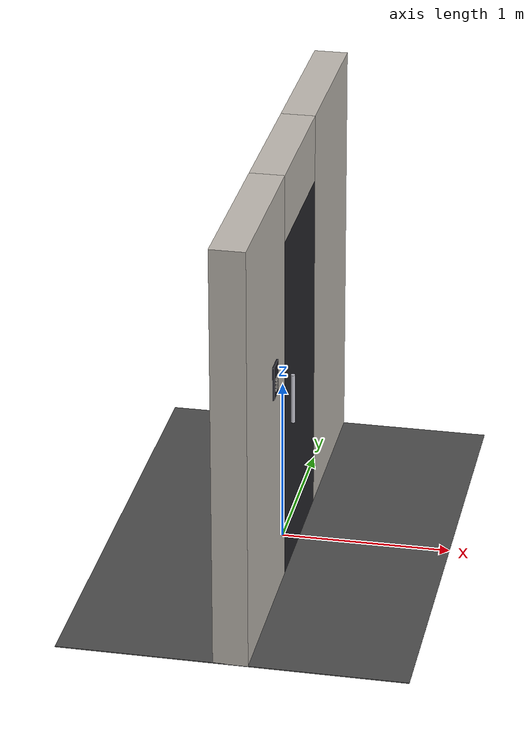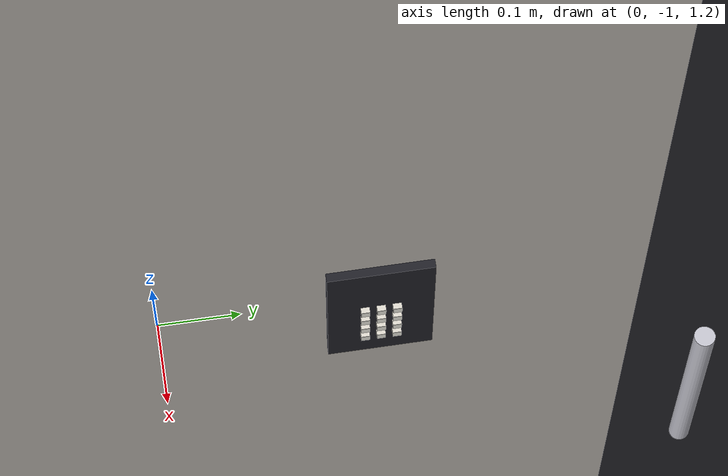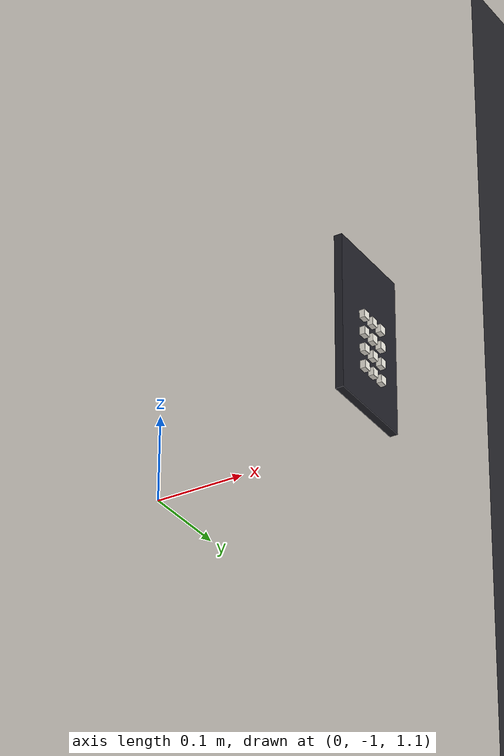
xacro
<?xml version="1.0"?>
<robot xmlns:xacro="http://www.ros.org/wiki/xacro" name="entrance_group_v3">

  <!-- Подключаем макрос кнопки -->
  <!-- $(find entrance_group_v3)/urdf/ -->
  <xacro:include filename="button_macro.xacro"/>

  <!-- =====================================================
       Свойства (легко править размеры из одного места)
       ===================================================== -->
  <xacro:property name="wall_thickness" value="0.2"/>
  <xacro:property name="wall_height"    value="2.5"/>
  <xacro:property name="opening_width"  value="0.9"/>
  <xacro:property name="opening_height" value="2.1"/>
  <xacro:property name="wall_side_w"    value="1.05"/>  <!-- ширина бокового сегмента стены -->
  <xacro:property name="wall_top_h"     value="0.4"/>   <!-- высота перемычки -->

  <xacro:property name="door_w"  value="0.9"/>
  <xacro:property name="door_h"  value="2.1"/>
  <xacro:property name="door_th" value="0.04"/>

  <!-- Сдвиг центра двери по X так, чтобы её НАРУЖНАЯ грань (со стороны -X)
       совпала с наружной плоскостью стены (X = -wall_thickness/2 = -0.1). -->
  <xacro:property name="door_x_center" value="${-wall_thickness/2.0 + door_th/2.0}"/>

  <link name="world"/>

  <!-- =====================================================
       Стена (4 сегмента + пол)
       ===================================================== -->
  <xacro:macro name="wall_block" params="name xyz size">
    <link name="${name}">
      <visual>
        <origin xyz="0 0 0" rpy="0 0 0"/>
        <geometry><box size="${size}"/></geometry>
        <material name="wall_grey"><color rgba="0.75 0.73 0.70 1.0"/></material>
      </visual>
      <collision>
        <origin xyz="0 0 0" rpy="0 0 0"/>
        <geometry><box size="${size}"/></geometry>
      </collision>
      <inertial>
        <mass value="200"/>
        <inertia ixx="50" ixy="0" ixz="0" iyy="50" iyz="0" izz="50"/>
      </inertial>
    </link>
    <joint name="${name}_fixed" type="fixed">
      <parent link="floor"/>
      <child link="${name}"/>
      <origin xyz="${xyz}" rpy="0 0 0"/>
    </joint>
    <gazebo reference="${name}">
      <visual>
        <material>
          <diffuse>1 1 1 1</diffuse>
          <pbr>
            <metal>
              <albedo_map>model://entrance_group_v3/materials/textures/wall_albedo.png</albedo_map>
              <metalness>0.0</metalness>
              <roughness>0.85</roughness>
            </metal>
          </pbr>
        </material>
      </visual>
    </gazebo>
  </xacro:macro>

  <xacro:wall_block name="wall_left"  xyz="0  0.975 1.25" size="0.2 1.05 2.5"/>
  <xacro:wall_block name="wall_right" xyz="0 -0.975 1.25" size="0.2 1.05 2.5"/>
  <xacro:wall_block name="wall_top"   xyz="0  0     2.3"  size="0.2 0.9  0.4"/>

  <!-- Пол -->
  <link name="floor">
    <visual>
      <geometry><box size="2.0 3.0 0.005"/></geometry>
      <material name="floor_dark"><color rgba="0.3 0.3 0.3 1.0"/></material>
    </visual>
    <collision>
      <geometry><box size="2.0 3.0 0.02"/></geometry>
    </collision>
    <inertial>
      <mass value="100"/>
      <inertia ixx="10" ixy="0" ixz="0" iyy="10" iyz="0" izz="10"/>
    </inertial>
  </link>
  <joint name="floor_fixed" type="fixed">
    <parent link="world"/>
    <child link="floor"/>
    <origin xyz="0 0 0.0025" rpy="0 0 0"/>
  </joint>
  <gazebo reference="floor">
    <visual>
      <material>
        <pbr><metal>
          <albedo_map>model://entrance_group_v3/materials/textures/floor_albedo.png</albedo_map>
          <metalness>0.0</metalness><roughness>0.7</roughness>
        </metal></pbr>
      </material>
    </visual>
  </gazebo>

  <!-- =====================================================
       Дверь
       ===================================================== -->
  <link name="door">
    <visual>
      <!-- Центр двери смещён на -door_w/2 = -0.45 по Y относительно шарнира (петля слева).
           По X центр в door_x_center (вровень с наружной стороной стены). -->
      <origin xyz="${-door_th / 2} -0.45 0" rpy="0 0 0"/>
      <geometry><box size="${door_th} ${door_w} ${door_h}"/></geometry>
      <material name="door_dark"><color rgba="0.15 0.15 0.17 1.0"/></material>
    </visual>
    <collision>
      <origin xyz="${door_x_center} -0.45 0" rpy="0 0 0"/>
      <geometry><box size="${door_th} ${door_w} ${door_h}"/></geometry>
    </collision>
    <inertial>
      <origin xyz="${door_x_center} -0.45 0" rpy="0 0 0"/>
      <mass value="25.0"/>
      <inertia ixx="9.20" ixy="0" ixz="0" iyy="0.083" iyz="0" izz="9.20"/>
    </inertial>
  </link>

  <joint name="door_hinge" type="revolute">
    <parent link="floor"/>
    <child link="door"/>
    <origin xyz="${-door_x_center + door_th / 2} 0.45 1.05" rpy="0 0 0"/>
    <axis xyz="0 0 1"/>
    <limit lower="0" upper="1.57" effort="100" velocity="2.0"/>
    <dynamics damping="3.0" friction="1.5"/>
  </joint>

  <!-- Пружина-доводчик двери -->
  <gazebo reference="door_hinge">
    <axis>
      <dynamics>
        <damping>3.0</damping>
        <friction>1.5</friction>
        <spring_reference>0</spring_reference>
        <spring_stiffness>8.0</spring_stiffness>
      </dynamics>
    </axis>
    <provideFeedback>true</provideFeedback>
  </gazebo>

  <!-- PBR-текстура двери: тёмный крашеный металл -->

  <!-- =====================================================
       Ручка двери (вертикальный цилиндр, статичная)
       ===================================================== -->
  <link name="door_handle">
    <visual>
      <origin xyz="0 0 0" rpy="0 0 0"/>
      <geometry><cylinder radius="0.0125" length="0.3"/></geometry>
      <material name="handle_steel">
        <color rgba="0.78 0.78 0.82 1.0"/>
      </material>
    </visual>
    <collision>
      <origin xyz="0 0 0" rpy="0 0 0"/>
      <geometry><cylinder radius="0.0125" length="0.3"/></geometry>
    </collision>
    <inertial>
      <mass value="0.3"/>
      <inertia ixx="0.0024" ixy="0" ixz="0" iyy="0.0024" iyz="0" izz="2.3e-5"/>
    </inertial>
  </link>

  <joint name="door_handle_fixed" type="fixed">
    <parent link="door"/>
    <child link="door_handle"/>
    <origin xyz="${door_th / 2.0 + 0.0125} -0.82 0.05" rpy="0 0 0"/>
  </joint>

  <gazebo reference="door_handle_fixed">
    <preserveFixedJoint>true</preserveFixedJoint>
    <disableFixedJointLumping>true</disableFixedJointLumping>
  </gazebo>

  <!-- =====================================================
       Домофон
       ===================================================== -->
  <link name="intercom_body">
    <visual>
      <origin xyz="0 0 0" rpy="0 0 0"/>
      <geometry><box size="0.015 0.12 0.20"/></geometry>
      <material name="intercom_dark"><color rgba="0.13 0.13 0.16 1.0"/></material>
    </visual>
    <collision>
      <geometry><box size="0.015 0.12 0.20"/></geometry>
    </collision>
    <inertial>
      <mass value="1.0"/>
      <inertia ixx="0.01" ixy="0" ixz="0" iyy="0.008" iyz="0" izz="0.005"/>
    </inertial>
  </link>

  <joint name="intercom_body_fixed" type="fixed">
    <parent link="floor"/>
    <child link="intercom_body"/>
    <!-- Домофон висит на НАРУЖНОЙ стороне стены (X = -wall_thickness/2 - depth/2 = -0.125),
         справа от двери в системе модели (Y = -0.75), высота 1.5 м. -->
    <origin xyz="0.1025 -0.75 1.4" rpy="0 0 0"/>
  </joint>

  <gazebo reference="intercom_body">
    <visual>
      <material>
        <diffuse>1 1 1 1</diffuse>
        <pbr>
          <metal>
            <albedo_map>model://entrance_group_v3/materials/textures/intercom_albedo.png</albedo_map>
            <metalness>0.1</metalness>
            <roughness>0.5</roughness>
          </metal>
        </pbr>
      </material>
    </visual>
  </gazebo>

  <!-- Кнопки домофона -->
  <xacro:property name="button_align" value="0.01"/>
  <!-- Ряд 1: 1 2 3 (верхний) -->
  <xacro:intercom_button button_name="1"    parent="intercom_body" xyz="${button_align} -0.018  0.013"/>
  <xacro:intercom_button button_name="2"    parent="intercom_body" xyz="${button_align}  0.000  0.013"/>
  <xacro:intercom_button button_name="3"    parent="intercom_body" xyz="${button_align}  0.018  0.013"/>
  <!-- Ряд 2: 4 5 6 -->
  <xacro:intercom_button button_name="4"    parent="intercom_body" xyz="${button_align} -0.018 -0.009"/>
  <xacro:intercom_button button_name="5"    parent="intercom_body" xyz="${button_align}  0.000 -0.009"/>
  <xacro:intercom_button button_name="6"    parent="intercom_body" xyz="${button_align}  0.018 -0.009"/>
  <!-- Ряд 3: 7 8 9 -->
  <xacro:intercom_button button_name="7"    parent="intercom_body" xyz="${button_align} -0.018 -0.031"/>
  <xacro:intercom_button button_name="8"    parent="intercom_body" xyz="${button_align}  0.000 -0.031"/>
  <xacro:intercom_button button_name="9"    parent="intercom_body" xyz="${button_align}  0.018 -0.031"/>
  <!-- Ряд 4: * 0 # (нижний) -->
  <xacro:intercom_button button_name="star" parent="intercom_body" xyz="${button_align} -0.018 -0.053"/>
  <xacro:intercom_button button_name="0"    parent="intercom_body" xyz="${button_align}  0.000 -0.053"/>
  <xacro:intercom_button button_name="hash" parent="intercom_body" xyz="${button_align}  0.018 -0.053"/>

</robot>

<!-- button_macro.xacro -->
<robot xmlns:xacro="http://www.ros.org/wiki/xacro">

  <xacro:property name="bx" value="0.008"/>
  <xacro:property name="by" value="0.010"/>
  <xacro:property name="bz" value="0.010"/>
  <xacro:property name="cap_thickness"  value="0.0005"/>
  <xacro:property name="travel"         value="0.003"/>
  <xacro:property name="spring_k"       value="500.0"/>
  <xacro:property name="damping"        value="3.0"/>

  <xacro:macro name="intercom_button"
               params="button_name parent xyz">

    <!-- ====== 1. Тело кнопки ====== -->
    <link name="button_${button_name}">
      <visual>
        <origin xyz="0 0 0" rpy="0 0 0"/>
        <geometry>
          <box size="${bx} ${by} ${bz}"/>

        </geometry>
        <material name="button_${button_name}_body_mat">
          <color rgba="0.88 0.86 0.82 1.0"/>
        </material>
      </visual>
      <collision>
        <origin xyz="0 0 0" rpy="0 0 0"/>
        <geometry>
          <box size="${bx} ${by} ${bz}"/>
        </geometry>
      </collision>
      <inertial>
        <mass value="0.005"/>
        <inertia ixx="1e-7" ixy="0" ixz="0"
                 iyy="1e-7" iyz="0" izz="1e-7"/>
      </inertial>
    </link>

    <joint name="button_${button_name}_joint" type="prismatic">
      <parent link="${parent}"/>
      <child link="button_${button_name}"/>
      <origin xyz="${xyz}" rpy="0 0 0"/>
      <axis xyz="-1 0 0"/>
      <limit lower="0" upper="${travel}" effort="20" velocity="0.1"/>
      <dynamics damping="${damping}" friction="0.1"/>
    </joint>

    <!-- SDF-расширение: пружинный возврат + упор хода. -->
    <gazebo reference="button_${button_name}_joint">
      <axis>
        <dynamics>
          <damping>${damping}</damping>
          <friction>0.1</friction>
          <spring_reference>0</spring_reference>
          <spring_stiffness>${spring_k}</spring_stiffness>
        </dynamics>
      </axis>
      <provideFeedback>true</provideFeedback>
    </gazebo>

    <link name="button_${button_name}_cap">
      <visual>
        <origin xyz="0 0 0" rpy="0 0 0"/>
        <geometry>
          <box size="${cap_thickness} ${by} ${bz}"/>
        </geometry>
        <material name="button_${button_name}_cap_mat">
          <color rgba="0.95 0.94 0.90 1.0"/>
        </material>
      </visual>
      <collision>
        <origin xyz="0 0 0" rpy="0 0 0"/>
        <geometry>
          <box size="${cap_thickness} ${by - 0.0005} ${bz - 0.0005}"/>
        </geometry>
      </collision>
      <inertial>
        <mass value="0.0005"/>
        <inertia ixx="1e-9" ixy="0" ixz="0"
                 iyy="1e-9" iyz="0" izz="1e-9"/>
      </inertial>
    </link>

    <joint name="button_${button_name}_cap_fixed" type="fixed">
      <parent link="button_${button_name}"/>
      <child link="button_${button_name}_cap"/>
      <origin xyz="${bx/2.0 + cap_thickness/2.0} 0 0"
              rpy="0 0 0"/>
    </joint>

    <!-- gazebo-разделитель, чтобы текстура родителя не переходила на дочерние fixed-элементы -->
    <gazebo reference="button_${button_name}_cap_fixed">
      <preserveFixedJoint>true</preserveFixedJoint>
      <disableFixedJointLumping>true</disableFixedJointLumping>
    </gazebo>

    <!-- ====== 4. PBR-текстура накладки (только тут есть цифра) ====== -->
    <gazebo reference="button_${button_name}_cap">
      <visual>
        <material>
          <pbr>
            <metal>
              <diffuse>1 1 1 1</diffuse>
              <albedo_map>model://entrance_group_v3/materials/textures/button_${button_name}.png</albedo_map>
              <metalness>0.0</metalness>
              <roughness>0.45</roughness>
            </metal>
          </pbr>
        </material>
      </visual>
    </gazebo>

    <!-- ====== 5. PBR-материал тела кнопки (без цифры, общая текстура пластика) ====== -->
    <gazebo reference="button_${button_name}">
      <visual>
        <material>
          <diffuse>1 1 1 1</diffuse>
          <pbr>
            <metal>
              <albedo_map>model://entrance_group_v3/materials/textures/button_body.png</albedo_map>
              <metalness>0.0</metalness>
              <roughness>0.55</roughness>
            </metal>
          </pbr>
        </material>
      </visual>
    </gazebo>

  </xacro:macro>

</robot>
